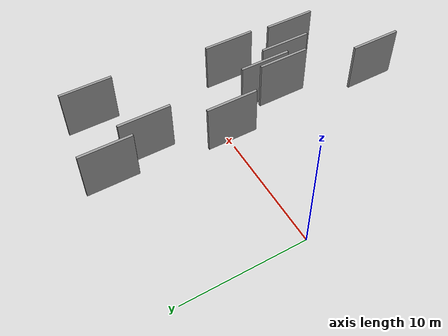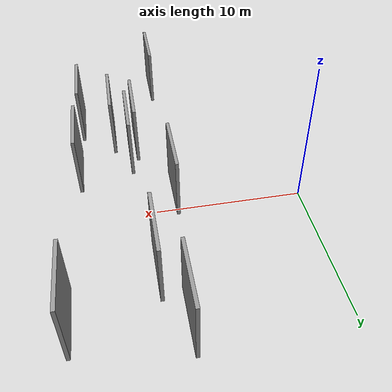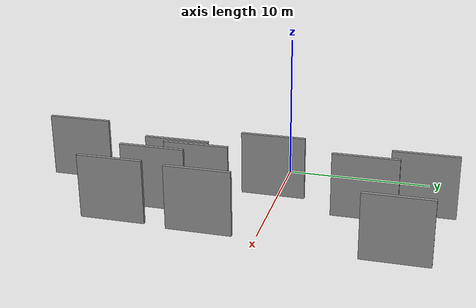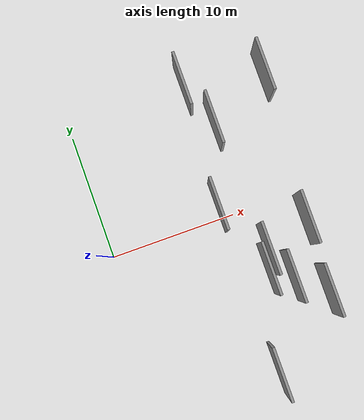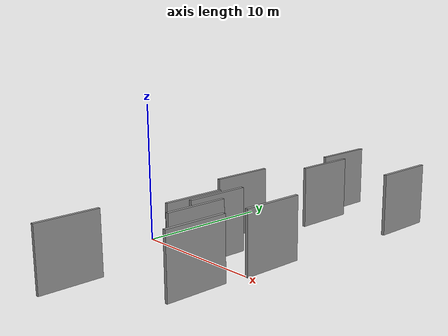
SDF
<sdf version="1.6">
 <world name="default">
  <scene>
   <sky><clouds><speed>12</speed></clouds></sky>
   <ambient>0.4 0.4 0.4 1</ambient>
   <background>0.7 0.7 0.7 1</background>
   <shadows>1</shadows>
  </scene>
  <gravity>0 0 -9.8066</gravity>
  <magnetic_field>6e-06 2.3e-05 -4.2e-05</magnetic_field>
  <physics default="0" name="default_physics" type="ode">
   <ode>
    <solver>
     <type>quick</type>
     <iters>10</iters>
     <sor>1.0</sor>
     <use_dynamic_moi_rescaling>0</use_dynamic_moi_rescaling>
    </solver>
    <constraints>
     <cfm>0</cfm>
     <erp>0.2</erp>
     <contact_max_correcting_vel>100</contact_max_correcting_vel>
     <contact_surface_layer>0.001</contact_surface_layer>
    </constraints>
   </ode>
   <max_step_size>0.004</max_step_size>
   <real_time_factor>1</real_time_factor>
   <real_time_update_rate>250</real_time_update_rate>
  </physics>
  <light name="sun" type="directional">
   <pose>0 0 10 0 0 0</pose>
   <diffuse>0.8 0.8 0.8 1</diffuse>
   <specular>0.2 0.2 0.2 1</specular>
   <attenuation>
    <range>1000</range>
    <constant>0.9</constant>
    <linear>0.01</linear>
    <quadratic>0.001</quadratic>
   </attenuation>
   <direction>-0.5 0.1 -0.9</direction>
  </light>
  <model name="grey_wall_1">
   <static>1</static>
   <pose>14.4329 -7.6389 2.5 0.000000 0.000000 1.570796</pose>
   <link name="link">
    <pose>0 0 2.00 0 0 0</pose>
    <collision name="collision"><geometry><box><size>4.00 0.2 4.00</size></box></geometry></collision>
    <visual name="visual">
     <cast_shadows>0</cast_shadows>
     <geometry><box><size>4.00 0.2 4.00</size></box></geometry>
     <material>
      <script>
       <uri>model://grey_wall/materials/scripts</uri>
       <uri>model://grey_wall/materials/textures</uri>
       <name>vrc/grey_wall</name>
      </script>
     </material>
    </visual>
   </link>
  </model>
  <model name="grey_wall_2">
   <static>1</static>
   <pose>14.6616 -2.2489 2.5 0.000000 0.000000 1.570796</pose>
   <link name="link">
    <pose>0 0 2.00 0 0 0</pose>
    <collision name="collision"><geometry><box><size>4.00 0.2 4.00</size></box></geometry></collision>
    <visual name="visual">
     <cast_shadows>0</cast_shadows>
     <geometry><box><size>4.00 0.2 4.00</size></box></geometry>
     <material>
      <script>
       <uri>model://grey_wall/materials/scripts</uri>
       <uri>model://grey_wall/materials/textures</uri>
       <name>vrc/grey_wall</name>
      </script>
     </material>
    </visual>
   </link>
  </model>
  <model name="grey_wall_3">
   <static>1</static>
   <pose>8.9003 0.7981 2.5 0.000000 0.000000 1.570796</pose>
   <link name="link">
    <pose>0 0 2.00 0 0 0</pose>
    <collision name="collision"><geometry><box><size>4.00 0.2 4.00</size></box></geometry></collision>
    <visual name="visual">
     <cast_shadows>0</cast_shadows>
     <geometry><box><size>4.00 0.2 4.00</size></box></geometry>
     <material>
      <script>
       <uri>model://grey_wall/materials/scripts</uri>
       <uri>model://grey_wall/materials/textures</uri>
       <name>vrc/grey_wall</name>
      </script>
     </material>
    </visual>
   </link>
  </model>
  <model name="grey_wall_4">
   <static>1</static>
   <pose>9.0244 -11.9419 2.5 0.000000 0.000000 1.570796</pose>
   <link name="link">
    <pose>0 0 2.00 0 0 0</pose>
    <collision name="collision"><geometry><box><size>4.00 0.2 4.00</size></box></geometry></collision>
    <visual name="visual">
     <cast_shadows>0</cast_shadows>
     <geometry><box><size>4.00 0.2 4.00</size></box></geometry>
     <material>
      <script>
       <uri>model://grey_wall/materials/scripts</uri>
       <uri>model://grey_wall/materials/textures</uri>
       <name>vrc/grey_wall</name>
      </script>
     </material>
    </visual>
   </link>
  </model>
  <model name="grey_wall_5">
   <static>1</static>
   <pose>12.3052 -5.8371 2.5 0.000000 0.000000 1.570796</pose>
   <link name="link">
    <pose>0 0 2.00 0 0 0</pose>
    <collision name="collision"><geometry><box><size>4.00 0.2 4.00</size></box></geometry></collision>
    <visual name="visual">
     <cast_shadows>0</cast_shadows>
     <geometry><box><size>4.00 0.2 4.00</size></box></geometry>
     <material>
      <script>
       <uri>model://grey_wall/materials/scripts</uri>
       <uri>model://grey_wall/materials/textures</uri>
       <name>vrc/grey_wall</name>
      </script>
     </material>
    </visual>
   </link>
  </model>
  <model name="grey_wall_6">
   <static>1</static>
   <pose>11.2869 -3.4116 2.5 0.000000 0.000000 1.570796</pose>
   <link name="link">
    <pose>0 0 2.00 0 0 0</pose>
    <collision name="collision"><geometry><box><size>4.00 0.2 4.00</size></box></geometry></collision>
    <visual name="visual">
     <cast_shadows>0</cast_shadows>
     <geometry><box><size>4.00 0.2 4.00</size></box></geometry>
     <material>
      <script>
       <uri>model://grey_wall/materials/scripts</uri>
       <uri>model://grey_wall/materials/textures</uri>
       <name>vrc/grey_wall</name>
      </script>
     </material>
    </visual>
   </link>
  </model>
  <model name="grey_wall_7">
   <static>1</static>
   <pose>10.6728 6.7365 2.5 0.000000 0.000000 1.570796</pose>
   <link name="link">
    <pose>0 0 2.00 0 0 0</pose>
    <collision name="collision"><geometry><box><size>4.00 0.2 4.00</size></box></geometry></collision>
    <visual name="visual">
     <cast_shadows>0</cast_shadows>
     <geometry><box><size>4.00 0.2 4.00</size></box></geometry>
     <material>
      <script>
       <uri>model://grey_wall/materials/scripts</uri>
       <uri>model://grey_wall/materials/textures</uri>
       <name>vrc/grey_wall</name>
      </script>
     </material>
    </visual>
   </link>
  </model>
  <model name="grey_wall_8">
   <static>1</static>
   <pose>10.8243 -4.7594 2.5 0.000000 0.000000 1.570796</pose>
   <link name="link">
    <pose>0 0 2.00 0 0 0</pose>
    <collision name="collision"><geometry><box><size>4.00 0.2 4.00</size></box></geometry></collision>
    <visual name="visual">
     <cast_shadows>0</cast_shadows>
     <geometry><box><size>4.00 0.2 4.00</size></box></geometry>
     <material>
      <script>
       <uri>model://grey_wall/materials/scripts</uri>
       <uri>model://grey_wall/materials/textures</uri>
       <name>vrc/grey_wall</name>
      </script>
     </material>
    </visual>
   </link>
  </model>
  <model name="grey_wall_9">
   <static>1</static>
   <pose>9.4486 10.1020 2.5 0.000000 0.000000 1.570796</pose>
   <link name="link">
    <pose>0 0 2.00 0 0 0</pose>
    <collision name="collision"><geometry><box><size>4.00 0.2 4.00</size></box></geometry></collision>
    <visual name="visual">
     <cast_shadows>0</cast_shadows>
     <geometry><box><size>4.00 0.2 4.00</size></box></geometry>
     <material>
      <script>
       <uri>model://grey_wall/materials/scripts</uri>
       <uri>model://grey_wall/materials/textures</uri>
       <name>vrc/grey_wall</name>
      </script>
     </material>
    </visual>
   </link>
  </model>
  <model name="grey_wall_10">
   <static>1</static>
   <pose>15.4065 9.1074 2.5 0.000000 0.000000 1.570796</pose>
   <link name="link">
    <pose>0 0 2.00 0 0 0</pose>
    <collision name="collision"><geometry><box><size>4.00 0.2 4.00</size></box></geometry></collision>
    <visual name="visual">
     <cast_shadows>0</cast_shadows>
     <geometry><box><size>4.00 0.2 4.00</size></box></geometry>
     <material>
      <script>
       <uri>model://grey_wall/materials/scripts</uri>
       <uri>model://grey_wall/materials/textures</uri>
       <name>vrc/grey_wall</name>
      </script>
     </material>
    </visual>
   </link>
  </model>
 </world>
</sdf>
